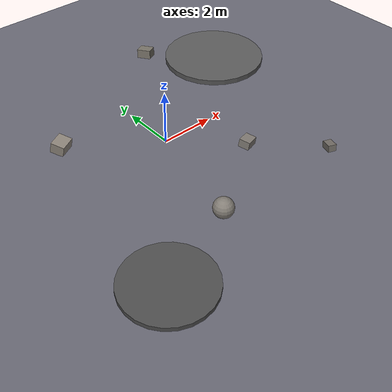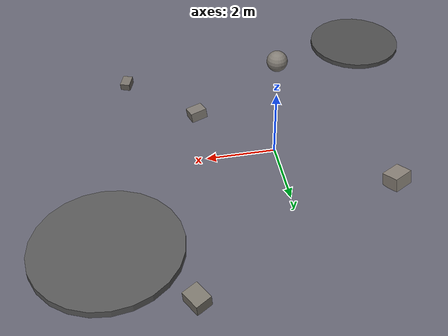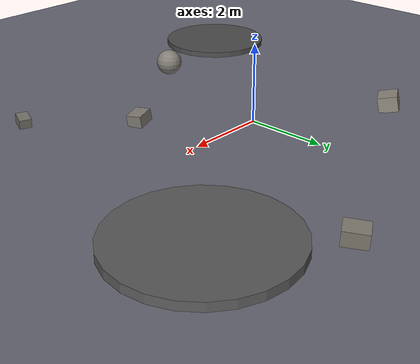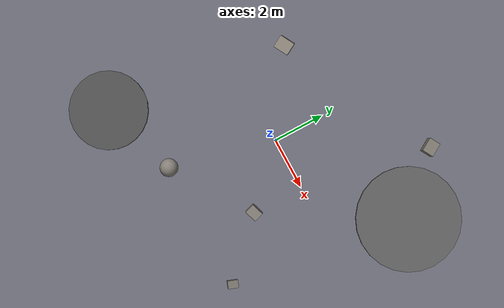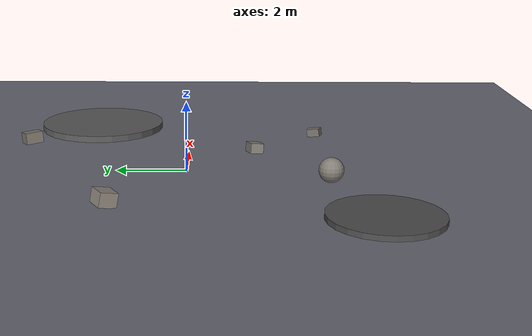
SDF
<?xml version="1.0" ?>
<sdf version="1.6">
  <world name="moon_world">

    <!-- Physics with moon gravity (1.62 m/s²) -->
    <physics type="ode">
      <gravity>0 0 -1.62</gravity>
      <max_step_size>0.001</max_step_size>
      <real_time_update_rate>1000</real_time_update_rate>
    </physics>

    <!-- Dark sky scene settings -->
    <scene>
      <ambient>0.1 0.1 0.15 1.0</ambient>
      <background>0.0 0.0 0.02 1.0</background>
      <shadows>true</shadows>
    </scene>

    <!-- Sun light (distant, harsh) -->
    <light name="sun" type="directional">
      <cast_shadows>true</cast_shadows>
      <pose>0 0 50 0 0 0</pose>
      <diffuse>1.0 1.0 0.95 1</diffuse>
      <specular>0.5 0.5 0.5 1</specular>
      <direction>0.3 0.2 -1</direction>
    </light>

    <!-- Dim ambient starlight -->
    <light name="starlight" type="point">
      <pose>0 0 100 0 0 0</pose>
      <diffuse>0.05 0.05 0.1 1</diffuse>
      <specular>0.0 0.0 0.0 1</specular>
      <attenuation>
        <range>200</range>
        <constant>1</constant>
        <linear>0</linear>
        <quadratic>0</quadratic>
      </attenuation>
    </light>

    <!-- Moon ground plane -->
    <model name="moon_ground">
      <static>true</static>
      <link name="ground_link">
        <collision name="ground_collision">
          <geometry>
            <plane>
              <normal>0 0 1</normal>
              <size>100 100</size>
            </plane>
          </geometry>
          <surface>
            <friction>
              <ode>
                <mu>0.8</mu>
                <mu2>0.8</mu2>
              </ode>
            </friction>
          </surface>
        </collision>
        <visual name="ground_visual">
          <geometry>
            <plane>
              <normal>0 0 1</normal>
              <size>100 100</size>
            </plane>
          </geometry>
          <material>
            <ambient>0.3 0.3 0.35 1</ambient>
            <diffuse>0.4 0.4 0.45 1</diffuse>
            <specular>0.1 0.1 0.1 1</specular>
          </material>
        </visual>
      </link>
    </model>

    <!-- Crater 1 (large) -->
    <model name="crater_1">
      <static>true</static>
      <pose>5 3 0.1 0 0 0</pose>
      <link name="crater_link">
        <collision name="crater_collision">
          <geometry>
            <cylinder>
              <radius>2.0</radius>
              <length>0.2</length>
            </cylinder>
          </geometry>
        </collision>
        <visual name="crater_visual">
          <geometry>
            <cylinder>
              <radius>2.0</radius>
              <length>0.2</length>
            </cylinder>
          </geometry>
          <material>
            <ambient>0.25 0.25 0.25 1</ambient>
            <diffuse>0.35 0.35 0.35 1</diffuse>
          </material>
        </visual>
      </link>
    </model>

    <!-- Crater 2 (medium) -->
    <model name="crater_2">
      <static>true</static>
      <pose>-4 -5 0.08 0 0 0</pose>
      <link name="crater_link">
        <collision name="crater_collision">
          <geometry>
            <cylinder>
              <radius>1.5</radius>
              <length>0.15</length>
            </cylinder>
          </geometry>
        </collision>
        <visual name="crater_visual">
          <geometry>
            <cylinder>
              <radius>1.5</radius>
              <length>0.15</length>
            </cylinder>
          </geometry>
          <material>
            <ambient>0.25 0.25 0.25 1</ambient>
            <diffuse>0.3 0.3 0.3 1</diffuse>
          </material>
        </visual>
      </link>
    </model>

    <!-- Rock 1 -->
    <model name="rock_1">
      <static>true</static>
      <pose>2 -2 0.15 0.1 0.1 0.3</pose>
      <link name="rock_link">
        <collision name="rock_collision">
          <geometry>
            <box>
              <size>0.5 0.4 0.3</size>
            </box>
          </geometry>
        </collision>
        <visual name="rock_visual">
          <geometry>
            <box>
              <size>0.5 0.4 0.3</size>
            </box>
          </geometry>
          <material>
            <ambient>0.35 0.33 0.3 1</ambient>
            <diffuse>0.5 0.48 0.45 1</diffuse>
          </material>
        </visual>
      </link>
    </model>

    <!-- Rock 2 -->
    <model name="rock_2">
      <static>true</static>
      <pose>-3 2 0.2 0.2 0 0.5</pose>
      <link name="rock_link">
        <collision name="rock_collision">
          <geometry>
            <box>
              <size>0.6 0.5 0.4</size>
            </box>
          </geometry>
        </collision>
        <visual name="rock_visual">
          <geometry>
            <box>
              <size>0.6 0.5 0.4</size>
            </box>
          </geometry>
          <material>
            <ambient>0.38 0.35 0.32 1</ambient>
            <diffuse>0.55 0.52 0.48 1</diffuse>
          </material>
        </visual>
      </link>
    </model>

    <!-- Rock 3 (boulder) -->
    <model name="rock_3">
      <static>true</static>
      <pose>-1 -4 0.35 0 0 0.8</pose>
      <link name="rock_link">
        <collision name="rock_collision">
          <geometry>
            <sphere>
              <radius>0.35</radius>
            </sphere>
          </geometry>
        </collision>
        <visual name="rock_visual">
          <geometry>
            <sphere>
              <radius>0.35</radius>
            </sphere>
          </geometry>
          <material>
            <ambient>0.4 0.38 0.35 1</ambient>
            <diffuse>0.5 0.48 0.45 1</diffuse>
          </material>
        </visual>
      </link>
    </model>

    <!-- Rock 4 -->
    <model name="rock_4">
      <static>true</static>
      <pose>4 -4 0.12 0 0.15 1.2</pose>
      <link name="rock_link">
        <collision name="rock_collision">
          <geometry>
            <box>
              <size>0.4 0.3 0.25</size>
            </box>
          </geometry>
        </collision>
        <visual name="rock_visual">
          <geometry>
            <box>
              <size>0.4 0.3 0.25</size>
            </box>
          </geometry>
          <material>
            <ambient>0.32 0.3 0.28 1</ambient>
            <diffuse>0.45 0.43 0.4 1</diffuse>
          </material>
        </visual>
      </link>
    </model>

    <!-- Rock 5 -->
    <model name="rock_5">
      <static>true</static>
      <pose>3 5 0.18 0.1 0.05 2.1</pose>
      <link name="rock_link">
        <collision name="rock_collision">
          <geometry>
            <box>
              <size>0.55 0.45 0.35</size>
            </box>
          </geometry>
        </collision>
        <visual name="rock_visual">
          <geometry>
            <box>
              <size>0.55 0.45 0.35</size>
            </box>
          </geometry>
          <material>
            <ambient>0.36 0.34 0.31 1</ambient>
            <diffuse>0.48 0.46 0.42 1</diffuse>
          </material>
        </visual>
      </link>
    </model>

  </world>
</sdf>
